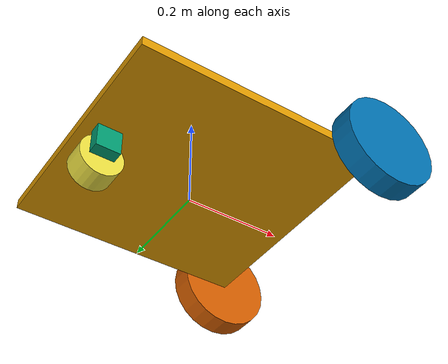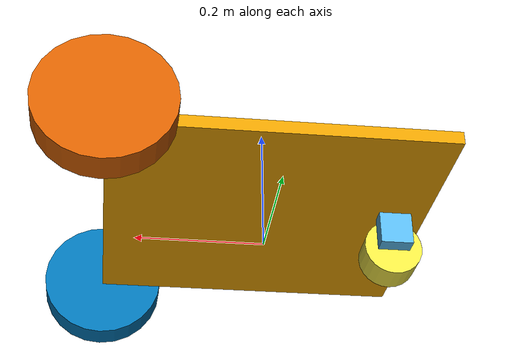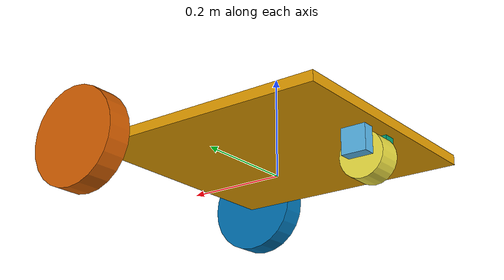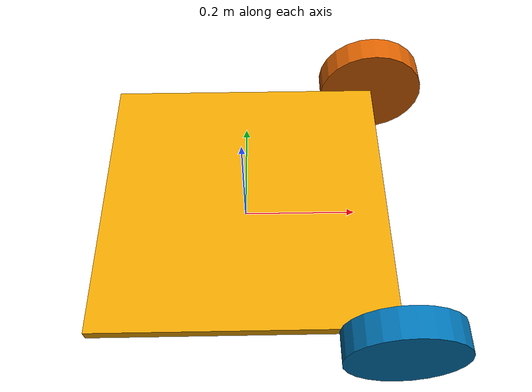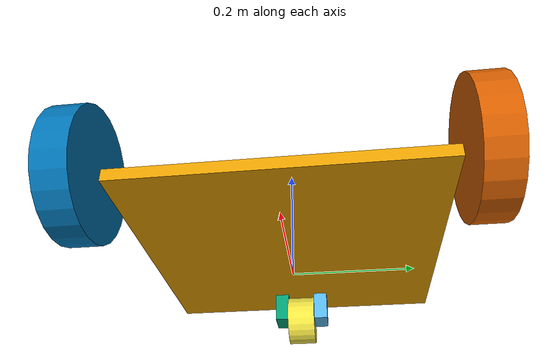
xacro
<?xml version="1.0" ?>
<robot name="ev3" xmlns:xacro="http://www.ros.org/wiki/xacro">
  <material name="AR_tag">
    <texture filename="model://materials/textures/frame.png"/>
  </material>

  <joint name="back_wheel_right" type="revolute">
    <parent link="wheel_chain_right"/>
    <child link="back_wheel"/>
    <origin rpy="1.57  0    0" xyz="0.0  0.0375 -0.03"/>
    <axis xyz="0.00000000e+00   0   -1"/>
    <mu value="0"/>
    <limit effort="-1.0" lower="-1.79769e+308" upper="1.79769e+308" velocity="-1.0"/>
  </joint>
  <joint name="left_chain_joint" type="fixed">
    <parent link="platform"/>
    <child link="wheel_chain_left"/>
    <origin rpy="0  0  0" xyz="-0.2 0.0375  0.024"/>
    <axis xyz="0  0  0"/>
    <limit effort="0" lower="0" upper="0" velocity="0"/>
  </joint>
  <joint name="right_chain_joint" type="fixed">
    <parent link="platform"/>
    <child link="wheel_chain_right"/>
    <origin rpy="0  0  0" xyz="-0.2 -0.0375  0.024"/>
    <axis xyz="0  0  0"/>
    <limit effort="0" lower="0" upper="0" velocity="0"/>
  </joint>
  <joint name="right_wheel_joint" type="revolute">
    <parent link="platform"/>
    <child link="right_wheel"/>
    <origin rpy="1.57  0    0" xyz="0.25  0.275  0.05"/>
    <axis xyz="0.00000000e+00   0   -1"/>
    <limit effort="-1.0" lower="-1.79769e+308" upper="1.79769e+308" velocity="-1.0"/>
  </joint>
  <joint name="left_wheel_joint" type="revolute">
    <parent link="platform"/>
    <child link="left_wheel"/>
    <origin rpy="1.57  0    0" xyz="0.25  -0.275  0.05"/>
    <axis xyz="0.00000000e+00   0   -1"/>
    <limit effort="-1.0" lower="-1.79769e+308" upper="1.79769e+308" velocity="-1.0"/>
  </joint>
  <link name="platform">
    <inertial>
      <mass value="2.5"/>
      <origin rpy="0  0  0" xyz="0  0  0"/>
      <inertia ixx="0.166667" ixy="0" ixz="0" iyy="0.166667" iyz="0" izz="0.166667"/>
    </inertial>
    <collision name="platform_collision">
      <origin rpy="0  0  0" xyz="0.0 0.0 0.05"/>
      <geometry>
        <box size="0.5 0.5 0.02"/>
      </geometry>
    </collision>
    <visual name="platform_visual">
      <origin rpy="0  0  0" xyz="-0.0 -0.0 0.05"/>
      <geometry>
        <box size="0.5 0.5 0.02"/>
      </geometry>
    </visual>
  </link>

  <gazebo reference="platform">
    <material>LandingStation</material>
  </gazebo>

  <link name="wheel_chain_left">
    <inertial>
      <mass value="1"/>
      <origin rpy="0  0  0" xyz="0  0  0"/>
      <inertia ixx="0.166667" ixy="0" ixz="0" iyy="0.166667" iyz="0" izz="0.166667"/>
    </inertial>
    <collision name="wheel_chain_right_collision">
      <origin rpy="0  0  0" xyz="0  0  0"/>
      <geometry>
        <box size="0.05 -0.025 0.07"/>
      </geometry>
    </collision>
    <visual name="wheel_chain_right_visual">
      <origin rpy="0  0  0" xyz="0  0  0"/>
      <geometry>
        <box size="0.05 0.025 0.07"/>
      </geometry>
    </visual>
  </link>
  <link name="wheel_chain_right">
    <inertial>
      <mass value="1"/>
      <origin rpy="0  0  0" xyz="0  0  0"/>
      <inertia ixx="0.166667" ixy="0" ixz="0" iyy="0.166667" iyz="0" izz="0.166667"/>
    </inertial>
    <collision name="wheel_chain_right_collision">
      <origin rpy="0  0  0" xyz="0  0  0"/>
      <geometry>
        <box size="0.05 0.025 0.07"/>
      </geometry>
    </collision>
    <visual name="wheel_chain_right_visual">
      <origin rpy="0  0  0" xyz="0  0  0"/>
      <geometry>
        <box size="0.05 0.025 0.07"/>
      </geometry>
    </visual>
  </link>
  <link name="back_wheel">
    <inertial>
      <mass value="0.2"/>
      <origin rpy="0  0  0" xyz="0  0  0"/>
      <inertia ixx="0.0" ixy="0" ixz="0" iyy="0.0" iyz="0" izz="0.0"/>
    </inertial>
    <collision name="back_wheel_collision">
      <origin rpy="0  0  0" xyz="0  0  0"/>
      <geometry>
        <cylinder length="0.05" radius="0.045"/>
      </geometry>
    </collision>
    <visual name="back_wheel_visual">
      <origin rpy="0  0  0" xyz="0  0  0"/>
      <geometry>
        <cylinder length="0.05" radius="0.045"/>
      </geometry>
    </visual>
  </link>
  <link name="left_wheel">
    <inertial>
      <mass value="0.2"/>
      <origin rpy="0  0  0" xyz="0  0  0"/>
      <inertia ixx="0.145833" ixy="0" ixz="0" iyy="0.145833" iyz="0" izz="0.125"/>
    </inertial>
    <collision name="left_wheel_collision">
      <origin rpy="0  0  0" xyz="0  0  0"/>
      <geometry>
        <cylinder length="0.05" radius="0.1"/>
      </geometry>
    </collision>
    <visual name="left_wheel_visual">
      <origin rpy="0  0  0" xyz="0  0  0"/>
      <geometry>
        <cylinder length="0.05" radius="0.1"/>
      </geometry>
    </visual>
  </link>
  <link name="right_wheel">
    <inertial>
      <mass value="0.2"/>
      <origin rpy="0  0  0" xyz="0  0  0.0"/>
      <inertia ixx="0.145833" ixy="0" ixz="0" iyy="0.145833" iyz="0" izz="0.125"/>
    </inertial>
    <collision name="right_wheel_collision">
      <origin rpy="0  0  0" xyz="0  0  0"/>
      <geometry>
        <cylinder length="0.05" radius="0.1"/>
      </geometry>
    </collision>
    <visual name="right_wheel_visual">
      <origin rpy="0  0  0" xyz="0  0  -0.0"/>
      <geometry>
        <cylinder length="0.05" radius="0.1"/>
      </geometry>
    </visual>
  </link>
</robot>
